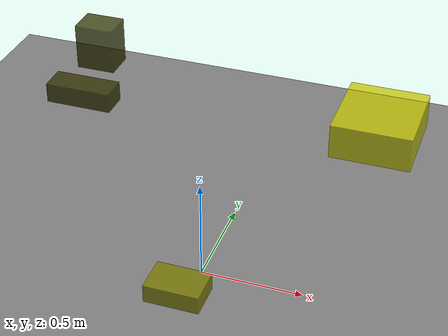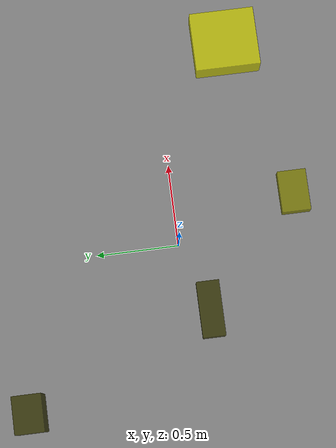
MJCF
<?xml version="1.0"?>
<mujoco model="obstacle_scene">
  <compiler angle="radian" coordinate="local"/>
  <option timestep="0.001" gravity="0 0 -9.81"/>

  <asset>
    <material name="obstacle_mat" rgba="0.8 0.8 0.0 0.8"/>
    <material name="ground_mat" rgba="0.5 0.5 0.5 1"/>
  </asset>

  <worldbody>
    <!-- Ground plane -->
    <geom name="ground" type="plane" size="3 3 0.1" material="ground_mat"/>

    <!-- Obstacles -->
    <body name="obstacle_0" pos="-0.500967 -0.094635 0.957985">
      <geom name="obs_0" type="box" size="0.146084 0.059438 0.043713" rgba="0.2 0.2 0.0 0.8"/>
    </body>
    <body name="obstacle_1" pos="0.151499 -0.674193 0.498082">
      <geom name="obs_1" type="box" size="0.118124 0.080646 0.040262" rgba="0.5 0.5 0.0 0.8"/>
    </body>
    <body name="obstacle_2" pos="0.845864 -0.334155 1.207907">
      <geom name="obs_2" type="box" size="0.152297 0.165662 0.067817" rgba="0.8 0.8 0.0 0.8"/>
    </body>
    <body name="obstacle_3" pos="-0.911473 0.937708 0.601568">
      <geom name="obs_3" type="box" size="0.103445 0.080976 0.122083" rgba="0.2 0.2 0.0 0.8"/>
    </body>
  </worldbody>
</mujoco>
